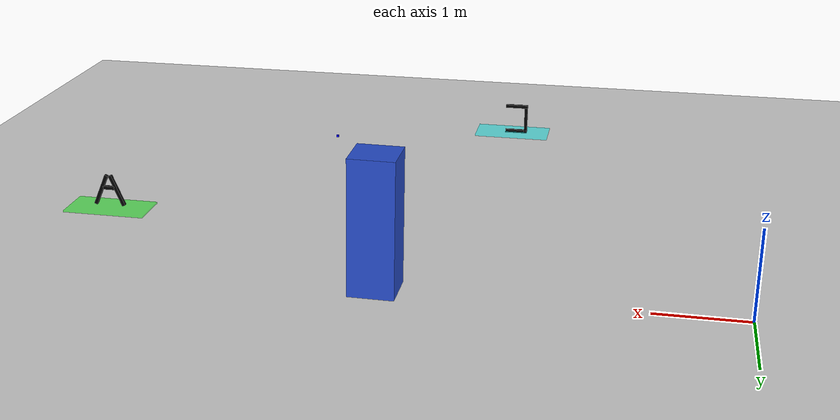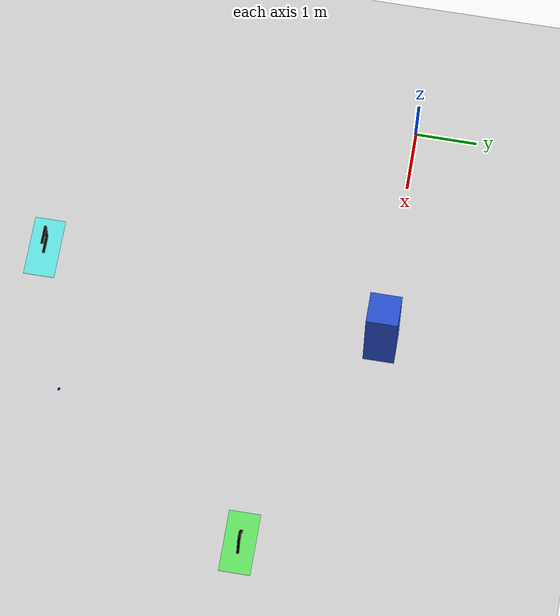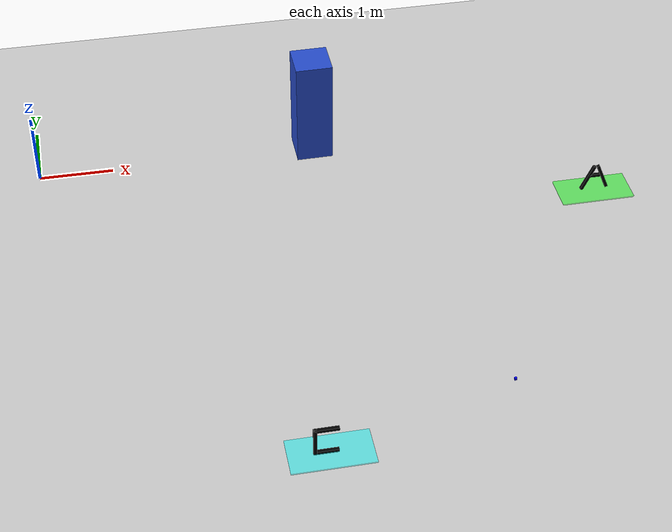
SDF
<sdf version="1.7">
 <world name="default">
  <model name="ground_plane">
   <static>1</static>
   <link name="link">
    <collision name="collision">
     <geometry><plane><normal>0 0 1</normal><size>100 100</size></plane></geometry>
     <surface><friction><ode><mu>100</mu><mu2>100</mu2></ode></friction></surface>
    </collision>
    <visual name="visual">
     <cast_shadows>0</cast_shadows>
     <geometry><plane><normal>0 0 1</normal><size>100 100</size></plane></geometry>
     <material>
      <script><uri>file://media/materials/scripts/gazebo.material</uri><name>Gazebo/Grey</name></script>
     </material>
    </visual>
    <velocity_decay><linear>0</linear><angular>0</angular></velocity_decay>
   </link>
  </model>
  <model name="Move2">
   <pose>3.81991 -0.000857 0.751454 0.001145 -0.005751 -2.6e-05</pose>
   <link name="link">
    <collision name="collision"><geometry><box><size>0.5 0.5 1.5</size></box></geometry></collision>
    <visual name="visual">
     <geometry><box><size>0.5 0.5 1.5</size></box></geometry>
     <material>
      <script><name>Blue</name><uri>file://media/materials/scripts/gazebo.material</uri></script>
     </material>
    </visual>
    <inertial>
     <inertia><ixx>1</ixx><ixy>0</ixy><ixz>0</ixz><iyy>1</iyy><iyz>0</iyz><izz>1</izz></inertia>
     <mass>1</mass>
    </inertial>
   </link>
   <plugin name="move1_plugin" filename="/home/ros/dev_ws/src/yzbot/Move_Obs/build/libanimated_models.so"/>
  </model>
  <model name="blue_cube_1">
   <pose>5.39631 -4.90642 0.015 0 0 -1e-06</pose>
   <link name="link">
    <inertial>
     <mass>0.01</mass>
     <inertia><ixx>1</ixx><ixy>0</ixy><ixz>0</ixz><iyy>1</iyy><iyz>0</iyz><izz>1</izz></inertia>
    </inertial>
    <collision name="collision">
     <geometry><box><size>0.001 0.001 0.03</size></box></geometry>
     <max_contacts>1</max_contacts>
    </collision>
    <visual name="visual">
     <geometry><box><size>0.03 0.03 0.03</size></box></geometry>
     <material><ambient>0 0 1 1</ambient><diffuse>0 0 1 1</diffuse></material>
    </visual>
   </link>
  </model>
  <model name="zone_a">
   <static>1</static>
   <pose>7.43891 -1.6523 0.01 0 -0 0</pose>
   <link name="base">
    <visual name="visual">
     <geometry><box><size>1 0.5 0.02</size></box></geometry>
     <material><ambient>0 1 0 0.5</ambient><diffuse>0 1 0 0.5</diffuse></material>
    </visual>
   </link>
   <link name="letter_A_1">
    <pose>-0.1 0 0.22 0 0.4 0</pose>
    <visual name="v">
     <geometry><box><size>0.04 0.04 0.4</size></box></geometry>
     <material><ambient>0 0 0 1</ambient><diffuse>0 0 0 1</diffuse></material>
    </visual>
   </link>
   <link name="letter_A_2">
    <pose>0.1 0 0.22 0 -0.4 0</pose>
    <visual name="v">
     <geometry><box><size>0.04 0.04 0.4</size></box></geometry>
     <material><ambient>0 0 0 1</ambient><diffuse>0 0 0 1</diffuse></material>
    </visual>
   </link>
   <link name="letter_A_3">
    <pose>0 0 0.25 0 -0 0</pose>
    <visual name="v">
     <geometry><box><size>0.15 0.04 0.04</size></box></geometry>
     <material><ambient>0 0 0 1</ambient><diffuse>0 0 0 1</diffuse></material>
    </visual>
   </link>
  </model>
  <model name="zone_c">
   <static>1</static>
   <pose>3.02108 -5.6094 0.01 0 -0 0</pose>
   <link name="base">
    <visual name="visual">
     <geometry><box><size>1 0.5 0.02</size></box></geometry>
     <material><ambient>0 1 1 0.5</ambient><diffuse>0 1 1 0.5</diffuse></material>
    </visual>
   </link>
   <link name="letter_C_1">
    <pose>-0.05 0 0.38 0 -0 0</pose>
    <visual name="v">
     <geometry><box><size>0.3 0.04 0.04</size></box></geometry>
     <material><ambient>0 0 0 1</ambient><diffuse>0 0 0 1</diffuse></material>
    </visual>
   </link>
   <link name="letter_C_2">
    <pose>-0.05 0 0.02 0 -0 0</pose>
    <visual name="v">
     <geometry><box><size>0.3 0.04 0.04</size></box></geometry>
     <material><ambient>0 0 0 1</ambient><diffuse>0 0 0 1</diffuse></material>
    </visual>
   </link>
   <link name="letter_C_3">
    <pose>-0.18 0 0.2 0 -0 0</pose>
    <visual name="v">
     <geometry><box><size>0.04 0.04 0.4</size></box></geometry>
     <material><ambient>0 0 0 1</ambient><diffuse>0 0 0 1</diffuse></material>
    </visual>
   </link>
  </model>
 </world>
</sdf>
